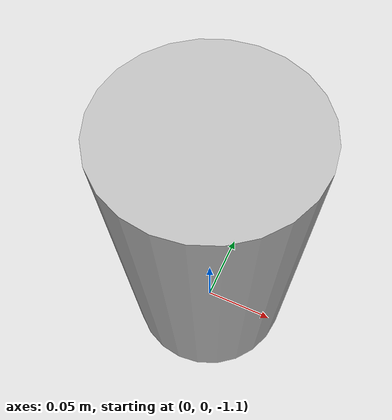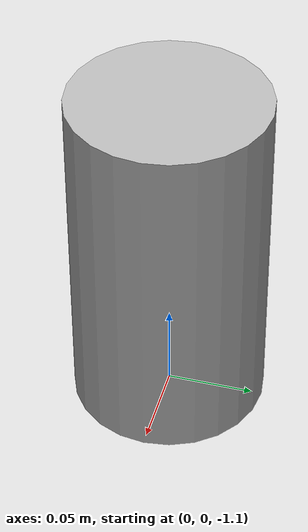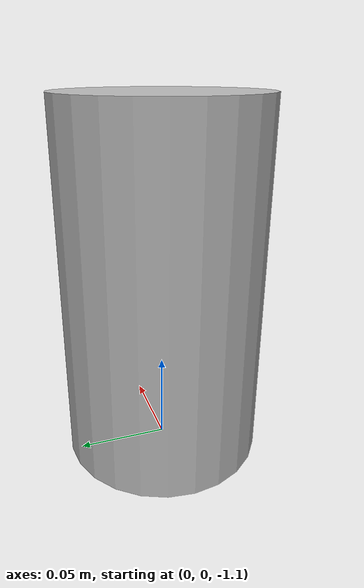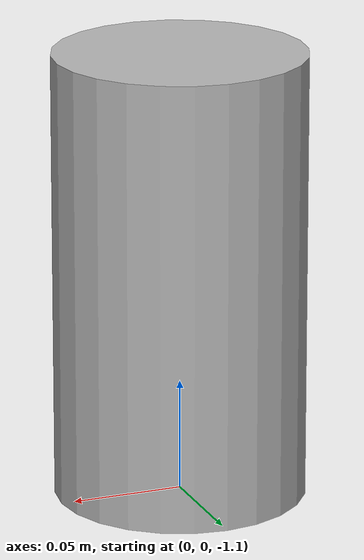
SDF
<?xml version="1.0" ?>
<sdf version="1.6">
  <world name="buoyant_tethys">
    <scene>
      <!-- For turquoise ambient -->
      <ambient>0.0 1.0 1.0</ambient>
      <background>0.0 0.7 0.8</background>
    </scene>

    <physics name="1ms" type="ode">
      <max_step_size>0.001</max_step_size>
      <real_time_factor>1.0</real_time_factor>
    </physics>
    <plugin
      filename="gz-sim-physics-system"
      name="gz::sim::systems::Physics">
    </plugin>
    <plugin
      filename="gz-sim-user-commands-system"
      name="gz::sim::systems::UserCommands">
    </plugin>
    <plugin
      filename="gz-sim-scene-broadcaster-system"
      name="gz::sim::systems::SceneBroadcaster">
    </plugin>
    <plugin
      filename="gz-sim-contact-system"
      name="gz::sim::systems::Contact">
    </plugin>
    <plugin
      filename="gz-sim-imu-system"
      name="gz::sim::systems::Imu">
    </plugin>

    <plugin
      filename="gz-sim-buoyancy-system"
      name="gz::sim::systems::Buoyancy">
      <uniform_fluid_density>1025</uniform_fluid_density>
    </plugin>

    <light type="directional" name="sun">
      <cast_shadows>true</cast_shadows>
      <pose>0 0 10 0 0 0</pose>
      <diffuse>1 1 1 1</diffuse>
      <specular>0.5 0.5 0.5 1</specular>
      <attenuation>
        <range>1000</range>
        <constant>0.9</constant>
        <linear>0.01</linear>
        <quadratic>0.001</quadratic>
      </attenuation>
      <direction>-0.5 0.1 -0.9</direction>
    </light>

    <model name="vbs">
      <pose>0 0 -1 0 0 0</pose>
      <link name='body'>
      <sensor name="vbs_imu" type="imu">
        <always_on>1</always_on>
        <update_rate>100</update_rate>
        <visualize>true</visualize>
        <topic>vbs/imu</topic>
      </sensor>
        <inertial>
          <mass>2.019667085</mass>
          <inertia>
            <ixx>0.02915</ixx>
            <iyy>0.02915</iyy>
            <izz>0.00625</izz>
          </inertia>
        </inertial>
        <visual name='vbs_visual'>
          <geometry>
            <cylinder>
              <radius>0.056</radius>
              <length>0.2</length>
            </cylinder>
          </geometry>
        </visual>
        <collision name='vbs_collision'>
          <geometry>
            <cylinder>
              <radius>0.056</radius>
              <length>0.2</length>
            </cylinder>
          </geometry>
        </collision>
      </link>
      <plugin
        filename="gz-sim-pose-publisher-system"
        name="gz::sim::systems::PosePublisher">
        <publish_link_pose>true</publish_link_pose>
        <publish_collision_pose>false</publish_collision_pose>
        <publish_visual_pose>false</publish_visual_pose>
        <publish_nested_model_pose>true</publish_nested_model_pose>
        <use_pose_vector_msg>false</use_pose_vector_msg>
        <update_frequency>100</update_frequency>
        <static>false</static>
      </plugin>
      <plugin
        filename="gz-sim-buoyancy-engine-system"
        name="gz::sim::systems::BuoyancyEngine">
        <link_name>body</link_name>
        <namespace>vbs</namespace>
        <min_volume>0.0018498</min_volume>
        <neutral_volume>0.0019704</neutral_volume>
        <default_volume>0.0019704</default_volume>
        <max_volume>0.0020909</max_volume>
        <max_inflation_rate>0.0000052</max_inflation_rate>
        <fluid_density>1025</fluid_density>
        <surface>0</surface>
      </plugin>
      <plugin
        filename="gz-sim-hydrodynamics-system"
        name="gz::sim::systems::Hydrodynamics">
        <link_name>body</link_name>
        <xDotU>-0.0</xDotU>
        <yDotV>-0.0</yDotV>
        <zDotW>-0.3896</zDotW>
        <kDotP>-0.0</kDotP>
        <mDotQ>-0.0</mDotQ>
        <nDotR>-0.0</nDotR>
        <xUabsU>-0.0</xUabsU>
        <xU>-0.0</xU>
        <yVabsV>-0.0</yVabsV>
        <yV>-0.0</yV>
        <zWabsW>-5.6551</zWabsW>
        <zW>-10.585</zW>
        <kPabsP>-0.0</kPabsP>
        <kP>-0.0</kP>
        <mQabsQ>-0.0</mQabsQ>
        <mQ>-0.0</mQ>
        <nRabsR>-0.0</nRabsR>
        <nR>-0.0</nR>
      </plugin>
    </model>
  </world>
</sdf>
